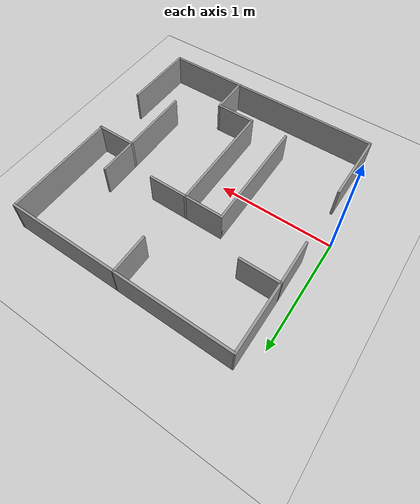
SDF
<sdf version='1.7'>
  <world name='default'>
    <scene>
      <ambient>0.4 0.4 0.4 1</ambient>
      <background>0.7 0.7 0.7 1</background>
      <shadows>1</shadows>
    </scene>
    <light name='sun' type='directional'>
      <cast_shadows>1</cast_shadows>
      <pose>0 0 10 0 -0 0</pose>
      <diffuse>0.8 0.8 0.8 1</diffuse>
      <specular>0.2 0.2 0.2 1</specular>
      <attenuation>
        <range>1000</range>
        <constant>0.9</constant>
        <linear>0.01</linear>
        <quadratic>0.001</quadratic>
      </attenuation>
      <direction>-0.5 0.1 -0.9</direction>
      <spot>
        <inner_angle>0</inner_angle>
        <outer_angle>0</outer_angle>
        <falloff>0</falloff>
      </spot>
    </light>
    <model name='ground_plane'>
      <static>1</static>
      <link name='link'>
        <collision name='collision'>
          <geometry>
            <plane>
              <normal>0 0 1</normal>
              <size>100 100</size>
            </plane>
          </geometry>
          <surface>
            <contact>
              <collide_bitmask>65535</collide_bitmask>
              <ode/>
            </contact>
            <friction>
              <ode>
                <mu>100</mu>
                <mu2>50</mu2>
              </ode>
              <torsional>
                <ode/>
              </torsional>
            </friction>
            <bounce/>
          </surface>
          <max_contacts>10</max_contacts>
        </collision>
        <visual name='visual'>
          <cast_shadows>0</cast_shadows>
          <geometry>
            <plane>
              <normal>0 0 1</normal>
              <size>100 100</size>
            </plane>
          </geometry>
          <material>
            <script>
              <uri>file://media/materials/scripts/gazebo.material</uri>
              <name>Gazebo/Grey</name>
            </script>
          </material>
        </visual>
        <self_collide>0</self_collide>
        <enable_wind>0</enable_wind>
        <kinematic>0</kinematic>
      </link>
    </model>
    <physics type='ode'>
      <real_time_update_rate>1000</real_time_update_rate>
      <max_step_size>0.001</max_step_size>
      <real_time_factor>1</real_time_factor>
      <ode>
        <solver>
          <type>quick</type>
          <iters>150</iters>
          <precon_iters>0</precon_iters>
          <sor>1.4</sor>
          <use_dynamic_moi_rescaling>1</use_dynamic_moi_rescaling>
        </solver>
        <constraints>
          <cfm>1e-05</cfm>
          <erp>0.2</erp>
          <contact_max_correcting_vel>2000</contact_max_correcting_vel>
          <contact_surface_layer>0.01</contact_surface_layer>
        </constraints>
      </ode>
    </physics>
    <gravity>0 0 -9.8</gravity>
    <magnetic_field>6e-06 2.3e-05 -4.2e-05</magnetic_field>
    <atmosphere type='adiabatic'/>
    <wind/>
    <spherical_coordinates>
      <surface_model>EARTH_WGS84</surface_model>
      <latitude_deg>0</latitude_deg>
      <longitude_deg>0</longitude_deg>
      <elevation>0</elevation>
      <heading_deg>0</heading_deg>
    </spherical_coordinates>

    <model name='my_maze'>
      <pose>1.6 0.17 0 0 -0 -1.57</pose>
      <link name='Wall_1'>
        <collision name='Wall_1_Collision'>
          <geometry>
            <box>
              <size>0.4 0.02 0.3</size>
            </box>
          </geometry>
          <pose>0 0 0.15 0 -0 0</pose>
          <max_contacts>10</max_contacts>
          <surface>
            <contact>
              <ode/>
            </contact>
            <bounce/>
            <friction>
              <torsional>
                <ode/>
              </torsional>
              <ode/>
            </friction>
          </surface>
        </collision>
        <visual name='Wall_1_Visual'>
          <pose>0 0 0.15 0 -0 0</pose>
          <geometry>
            <box>
              <size>0.4 0.02 0.3</size>
            </box>
          </geometry>
          <material>
            <script>
              <uri>file://media/materials/scripts/gazebo.material</uri>
              <name>Gazebo/Grey</name>
            </script>
            <ambient>1 1 1 1</ambient>
          </material>
          <meta>
            <layer>0</layer>
          </meta>
        </visual>
        <pose>-0.285549 -1.47495 0 0 -0 0.009893</pose>
        <self_collide>0</self_collide>
        <enable_wind>0</enable_wind>
        <kinematic>0</kinematic>
      </link>
      <link name='Wall_10'>
        <collision name='Wall_10_Collision'>
          <geometry>
            <box>
              <size>0.998774 0.02 0.3</size>
            </box>
          </geometry>
          <pose>0 0 0.15 0 -0 0</pose>
          <max_contacts>10</max_contacts>
          <surface>
            <contact>
              <ode/>
            </contact>
            <bounce/>
            <friction>
              <torsional>
                <ode/>
              </torsional>
              <ode/>
            </friction>
          </surface>
        </collision>
        <visual name='Wall_10_Visual'>
          <pose>0 0 0.15 0 -0 0</pose>
          <geometry>
            <box>
              <size>0.998774 0.02 0.3</size>
            </box>
          </geometry>
          <material>
            <script>
              <uri>file://media/materials/scripts/gazebo.material</uri>
              <name>Gazebo/Grey</name>
            </script>
            <ambient>1 1 1 1</ambient>
          </material>
          <meta>
            <layer>0</layer>
          </meta>
        </visual>
        <pose>-1.05524 -0.972611 0 0 -0 1.56954</pose>
        <self_collide>0</self_collide>
        <enable_wind>0</enable_wind>
        <kinematic>0</kinematic>
      </link>
      <link name='Wall_12'>
        <collision name='Wall_12_Collision'>
          <geometry>
            <box>
              <size>1 0.02 0.3</size>
            </box>
          </geometry>
          <pose>0 0 0.15 0 -0 0</pose>
          <max_contacts>10</max_contacts>
          <surface>
            <contact>
              <ode/>
            </contact>
            <bounce/>
            <friction>
              <torsional>
                <ode/>
              </torsional>
              <ode/>
            </friction>
          </surface>
        </collision>
        <visual name='Wall_12_Visual'>
          <pose>0 0 0.15 0 -0 0</pose>
          <geometry>
            <box>
              <size>1 0.02 0.3</size>
            </box>
          </geometry>
          <material>
            <script>
              <uri>file://media/materials/scripts/gazebo.material</uri>
              <name>Gazebo/Grey</name>
            </script>
            <ambient>1 1 1 1</ambient>
          </material>
          <meta>
            <layer>0</layer>
          </meta>
        </visual>
        <pose>-1.05462 0.006775 0 0 -0 1.5708</pose>
        <self_collide>0</self_collide>
        <enable_wind>0</enable_wind>
        <kinematic>0</kinematic>
      </link>
      <link name='Wall_14'>
        <collision name='Wall_14_Collision'>
          <geometry>
            <box>
              <size>0.35 0.02 0.3</size>
            </box>
          </geometry>
          <pose>0 0 0.15 0 -0 0</pose>
          <max_contacts>10</max_contacts>
          <surface>
            <contact>
              <ode/>
            </contact>
            <bounce/>
            <friction>
              <torsional>
                <ode/>
              </torsional>
              <ode/>
            </friction>
          </surface>
        </collision>
        <visual name='Wall_14_Visual'>
          <pose>0 0 0.15 0 -0 0</pose>
          <geometry>
            <box>
              <size>0.35 0.02 0.3</size>
            </box>
          </geometry>
          <material>
            <script>
              <uri>file://media/materials/scripts/gazebo.material</uri>
              <name>Gazebo/Grey</name>
            </script>
            <ambient>1 1 1 1</ambient>
          </material>
          <meta>
            <layer>0</layer>
          </meta>
        </visual>
        <pose>-0.889623 -0.483225 0 0 -0 0</pose>
        <self_collide>0</self_collide>
        <enable_wind>0</enable_wind>
        <kinematic>0</kinematic>
      </link>
      <link name='Wall_16'>
        <collision name='Wall_16_Collision'>
          <geometry>
            <box>
              <size>1.00693 0.02 0.3</size>
            </box>
          </geometry>
          <pose>0 0 0.15 0 -0 0</pose>
          <max_contacts>10</max_contacts>
          <surface>
            <contact>
              <ode/>
            </contact>
            <bounce/>
            <friction>
              <torsional>
                <ode/>
              </torsional>
              <ode/>
            </friction>
          </surface>
        </collision>
        <visual name='Wall_16_Visual'>
          <pose>0 0 0.15 0 -0 0</pose>
          <geometry>
            <box>
              <size>1.00693 0.02 0.3</size>
            </box>
          </geometry>
          <material>
            <script>
              <uri>file://media/materials/scripts/gazebo.material</uri>
              <name>Gazebo/Grey</name>
            </script>
            <ambient>1 1 1 1</ambient>
          </material>
          <meta>
            <layer>0</layer>
          </meta>
        </visual>
        <pose>-0.561335 0.496775 0 0 -0 0</pose>
        <self_collide>0</self_collide>
        <enable_wind>0</enable_wind>
        <kinematic>0</kinematic>
      </link>
      <link name='Wall_18'>
        <collision name='Wall_18_Collision'>
          <geometry>
            <box>
              <size>0.356575 0.02 0.3</size>
            </box>
          </geometry>
          <pose>0 0 0.15 0 -0 0</pose>
          <max_contacts>10</max_contacts>
          <surface>
            <contact>
              <ode/>
            </contact>
            <bounce/>
            <friction>
              <torsional>
                <ode/>
              </torsional>
              <ode/>
            </friction>
          </surface>
        </collision>
        <visual name='Wall_18_Visual'>
          <pose>0 0 0.15 0 -0 0</pose>
          <geometry>
            <box>
              <size>0.356575 0.02 0.3</size>
            </box>
          </geometry>
          <material>
            <script>
              <uri>file://media/materials/scripts/gazebo.material</uri>
              <name>Gazebo/Grey</name>
            </script>
            <ambient>1 1 1 1</ambient>
          </material>
          <meta>
            <layer>0</layer>
          </meta>
        </visual>
        <pose>-0.068048 0.335062 0 0 -0 -1.5708</pose>
        <self_collide>0</self_collide>
        <enable_wind>0</enable_wind>
        <kinematic>0</kinematic>
      </link>
      <link name='Wall_20'>
        <collision name='Wall_20_Collision'>
          <geometry>
            <box>
              <size>0.35 0.02 0.3</size>
            </box>
          </geometry>
          <pose>0 0 0.15 0 -0 0</pose>
          <max_contacts>10</max_contacts>
          <surface>
            <contact>
              <ode/>
            </contact>
            <bounce/>
            <friction>
              <torsional>
                <ode/>
              </torsional>
              <ode/>
            </friction>
          </surface>
        </collision>
        <visual name='Wall_20_Visual'>
          <pose>0 0 0.15 0 -0 0</pose>
          <geometry>
            <box>
              <size>0.35 0.02 0.3</size>
            </box>
          </geometry>
          <material>
            <script>
              <uri>file://media/materials/scripts/gazebo.material</uri>
              <name>Gazebo/Grey</name>
            </script>
            <ambient>1 1 1 1</ambient>
          </material>
          <meta>
            <layer>0</layer>
          </meta>
        </visual>
        <pose>-0.475549 -1.31183 0 0 -0 1.5708</pose>
        <self_collide>0</self_collide>
        <enable_wind>0</enable_wind>
        <kinematic>0</kinematic>
      </link>
      <link name='Wall_24'>
        <collision name='Wall_24_Collision'>
          <geometry>
            <box>
              <size>0.65 0.02 0.3</size>
            </box>
          </geometry>
          <pose>0 0 0.15 0 -0 0</pose>
          <max_contacts>10</max_contacts>
          <surface>
            <contact>
              <ode/>
            </contact>
            <bounce/>
            <friction>
              <torsional>
                <ode/>
              </torsional>
              <ode/>
            </friction>
          </surface>
        </collision>
        <visual name='Wall_24_Visual'>
          <pose>0 0 0.15 0 -0 0</pose>
          <geometry>
            <box>
              <size>0.65 0.02 0.3</size>
            </box>
          </geometry>
          <material>
            <script>
              <uri>file://media/materials/scripts/gazebo.material</uri>
              <name>Gazebo/Grey</name>
            </script>
            <ambient>1 1 1 1</ambient>
          </material>
          <meta>
            <layer>0</layer>
          </meta>
        </visual>
        <pose>0.740377 0.493487 0 0 -0 -0.010436</pose>
        <self_collide>0</self_collide>
        <enable_wind>0</enable_wind>
        <kinematic>0</kinematic>
      </link>
      <link name='Wall_26'>
        <collision name='Wall_26_Collision'>
          <geometry>
            <box>
              <size>0.7 0.02 0.3</size>
            </box>
          </geometry>
          <pose>0 0 0.15 0 -0 0</pose>
          <max_contacts>10</max_contacts>
          <surface>
            <contact>
              <ode/>
            </contact>
            <bounce/>
            <friction>
              <torsional>
                <ode/>
              </torsional>
              <ode/>
            </friction>
          </surface>
        </collision>
        <visual name='Wall_26_Visual'>
          <pose>0 0 0.15 0 -0 0</pose>
          <geometry>
            <box>
              <size>0.7 0.02 0.3</size>
            </box>
          </geometry>
          <material>
            <script>
              <uri>file://media/materials/scripts/gazebo.material</uri>
              <name>Gazebo/Grey</name>
            </script>
            <ambient>1 1 1 1</ambient>
          </material>
          <meta>
            <layer>0</layer>
          </meta>
        </visual>
        <pose>1.05562 0.150064 0 0 -0 -1.57009</pose>
        <self_collide>0</self_collide>
        <enable_wind>0</enable_wind>
        <kinematic>0</kinematic>
      </link>
      <link name='Wall_28'>
        <collision name='Wall_28_Collision'>
          <geometry>
            <box>
              <size>1.3 0.02 0.3</size>
            </box>
          </geometry>
          <pose>0 0 0.15 0 -0 0</pose>
          <max_contacts>10</max_contacts>
          <surface>
            <contact>
              <ode/>
            </contact>
            <bounce/>
            <friction>
              <torsional>
                <ode/>
              </torsional>
              <ode/>
            </friction>
          </surface>
        </collision>
        <visual name='Wall_28_Visual'>
          <pose>0 0 0.15 0 -0 0</pose>
          <geometry>
            <box>
              <size>1.3 0.02 0.3</size>
            </box>
          </geometry>
          <material>
            <script>
              <uri>file://media/materials/scripts/gazebo.material</uri>
              <name>Gazebo/Grey</name>
            </script>
            <ambient>1 1 1 1</ambient>
          </material>
          <meta>
            <layer>0</layer>
          </meta>
        </visual>
        <pose>1.05586 -0.830071 0 0 -0 -1.5708</pose>
        <self_collide>0</self_collide>
        <enable_wind>0</enable_wind>
        <kinematic>0</kinematic>
      </link>
      <link name='Wall_30'>
        <collision name='Wall_30_Collision'>
          <geometry>
            <box>
              <size>0.35 0.02 0.3</size>
            </box>
          </geometry>
          <pose>0 0 0.15 0 -0 0</pose>
          <max_contacts>10</max_contacts>
          <surface>
            <contact>
              <ode/>
            </contact>
            <bounce/>
            <friction>
              <torsional>
                <ode/>
              </torsional>
              <ode/>
            </friction>
          </surface>
        </collision>
        <visual name='Wall_30_Visual'>
          <pose>0 0 0.15 0 -0 0</pose>
          <geometry>
            <box>
              <size>0.35 0.02 0.3</size>
            </box>
          </geometry>
          <material>
            <script>
              <uri>file://media/materials/scripts/gazebo.material</uri>
              <name>Gazebo/Grey</name>
            </script>
            <ambient>1 1 1 1</ambient>
          </material>
          <meta>
            <layer>0</layer>
          </meta>
        </visual>
        <pose>0.890857 -0.190071 0 0 -0 3.14159</pose>
        <self_collide>0</self_collide>
        <enable_wind>0</enable_wind>
        <kinematic>0</kinematic>
      </link>
      <link name='Wall_32'>
        <collision name='Wall_32_Collision'>
          <geometry>
            <box>
              <size>0.35 0.02 0.3</size>
            </box>
          </geometry>
          <pose>0 0 0.15 0 -0 0</pose>
          <max_contacts>10</max_contacts>
          <surface>
            <contact>
              <ode/>
            </contact>
            <bounce/>
            <friction>
              <torsional>
                <ode/>
              </torsional>
              <ode/>
            </friction>
          </surface>
        </collision>
        <visual name='Wall_32_Visual'>
          <pose>0 0 0.15 0 -0 0</pose>
          <geometry>
            <box>
              <size>0.35 0.02 0.3</size>
            </box>
          </geometry>
          <material>
            <script>
              <uri>file://media/materials/scripts/gazebo.material</uri>
              <name>Gazebo/Grey</name>
            </script>
            <ambient>1 1 1 1</ambient>
          </material>
          <meta>
            <layer>0</layer>
          </meta>
        </visual>
        <pose>0.725857 -0.355071 0 0 -0 -1.5708</pose>
        <self_collide>0</self_collide>
        <enable_wind>0</enable_wind>
        <kinematic>0</kinematic>
      </link>
      <link name='Wall_34'>
        <collision name='Wall_34_Collision'>
          <geometry>
            <box>
              <size>1 0.02 0.3</size>
            </box>
          </geometry>
          <pose>0 0 0.15 0 -0 0</pose>
          <max_contacts>10</max_contacts>
          <surface>
            <contact>
              <ode/>
            </contact>
            <bounce/>
            <friction>
              <torsional>
                <ode/>
              </torsional>
              <ode/>
            </friction>
          </surface>
        </collision>
        <visual name='Wall_34_Visual'>
          <pose>0 0 0.15 0 -0 0</pose>
          <geometry>
            <box>
              <size>1 0.02 0.3</size>
            </box>
          </geometry>
          <material>
            <script>
              <uri>file://media/materials/scripts/gazebo.material</uri>
              <name>Gazebo/Grey</name>
            </script>
            <ambient>1 1 1 1</ambient>
          </material>
          <meta>
            <layer>0</layer>
          </meta>
        </visual>
        <pose>0.235857 -0.520071 0 0 -0 3.14159</pose>
        <self_collide>0</self_collide>
        <enable_wind>0</enable_wind>
        <kinematic>0</kinematic>
      </link>
      <link name='Wall_36'>
        <collision name='Wall_36_Collision'>
          <geometry>
            <box>
              <size>0.35 0.02 0.3</size>
            </box>
          </geometry>
          <pose>0 0 0.15 0 -0 0</pose>
          <max_contacts>10</max_contacts>
          <surface>
            <contact>
              <ode/>
            </contact>
            <bounce/>
            <friction>
              <torsional>
                <ode/>
              </torsional>
              <ode/>
            </friction>
          </surface>
        </collision>
        <visual name='Wall_36_Visual'>
          <pose>0 0 0.15 0 -0 0</pose>
          <geometry>
            <box>
              <size>0.35 0.02 0.3</size>
            </box>
          </geometry>
          <material>
            <script>
              <uri>file://media/materials/scripts/gazebo.material</uri>
              <name>Gazebo/Grey</name>
            </script>
            <ambient>1 1 1 1</ambient>
          </material>
          <meta>
            <layer>0</layer>
          </meta>
        </visual>
        <pose>-0.254143 -0.685071 0 0 -0 -1.5708</pose>
        <self_collide>0</self_collide>
        <enable_wind>0</enable_wind>
        <kinematic>0</kinematic>
      </link>
      <link name='Wall_38'>
        <collision name='Wall_38_Collision'>
          <geometry>
            <box>
              <size>1 0.02 0.3</size>
            </box>
          </geometry>
          <pose>0 0 0.15 0 -0 0</pose>
          <max_contacts>10</max_contacts>
          <surface>
            <contact>
              <ode/>
            </contact>
            <bounce/>
            <friction>
              <torsional>
                <ode/>
              </torsional>
              <ode/>
            </friction>
          </surface>
        </collision>
        <visual name='Wall_38_Visual'>
          <pose>0 0 0.15 0 -0 0</pose>
          <geometry>
            <box>
              <size>1 0.02 0.3</size>
            </box>
          </geometry>
          <material>
            <script>
              <uri>file://media/materials/scripts/gazebo.material</uri>
              <name>Gazebo/Grey</name>
            </script>
            <ambient>1 1 1 1</ambient>
          </material>
          <meta>
            <layer>0</layer>
          </meta>
        </visual>
        <pose>0.235857 -0.850071 0 0 -0 0</pose>
        <self_collide>0</self_collide>
        <enable_wind>0</enable_wind>
        <kinematic>0</kinematic>
      </link>
      <link name='Wall_40'>
        <collision name='Wall_40_Collision'>
          <geometry>
            <box>
              <size>0.35 0.02 0.3</size>
            </box>
          </geometry>
          <pose>0 0 0.15 0 -0 0</pose>
          <max_contacts>10</max_contacts>
          <surface>
            <contact>
              <ode/>
            </contact>
            <bounce/>
            <friction>
              <torsional>
                <ode/>
              </torsional>
              <ode/>
            </friction>
          </surface>
        </collision>
        <visual name='Wall_40_Visual'>
          <pose>0 0 0.15 0 -0 0</pose>
          <geometry>
            <box>
              <size>0.35 0.02 0.3</size>
            </box>
          </geometry>
          <material>
            <script>
              <uri>file://media/materials/scripts/gazebo.material</uri>
              <name>Gazebo/Grey</name>
            </script>
            <ambient>1 1 1 1</ambient>
          </material>
          <meta>
            <layer>0</layer>
          </meta>
        </visual>
        <pose>-0.254143 -0.355071 0 0 -0 1.5708</pose>
        <self_collide>0</self_collide>
        <enable_wind>0</enable_wind>
        <kinematic>0</kinematic>
      </link>
      <link name='Wall_42'>
        <collision name='Wall_42_Collision'>
          <geometry>
            <box>
              <size>0.62 0.02 0.3</size>
            </box>
          </geometry>
          <pose>0 0 0.15 0 -0 0</pose>
          <max_contacts>10</max_contacts>
          <surface>
            <contact>
              <ode/>
            </contact>
            <bounce/>
            <friction>
              <torsional>
                <ode/>
              </torsional>
              <ode/>
            </friction>
          </surface>
        </collision>
        <visual name='Wall_42_Visual'>
          <pose>0 0 0.15 0 -0 0</pose>
          <geometry>
            <box>
              <size>0.62 0.02 0.3</size>
            </box>
          </geometry>
          <material>
            <script>
              <uri>file://media/materials/scripts/gazebo.material</uri>
              <name>Gazebo/Grey</name>
            </script>
            <ambient>1 1 1 1</ambient>
          </material>
          <meta>
            <layer>0</layer>
          </meta>
        </visual>
        <pose>0.755857 -1.47007 0 0 -0 3.14159</pose>
        <self_collide>0</self_collide>
        <enable_wind>0</enable_wind>
        <kinematic>0</kinematic>
      </link>
      <link name='Wall_46'>
        <collision name='Wall_46_Collision'>
          <geometry>
            <box>
              <size>0.35 0.02 0.3</size>
            </box>
          </geometry>
          <pose>0 0 0.15 0 -0 0</pose>
          <max_contacts>10</max_contacts>
          <surface>
            <contact>
              <ode/>
            </contact>
            <bounce/>
            <friction>
              <torsional>
                <ode/>
              </torsional>
              <ode/>
            </friction>
          </surface>
        </collision>
        <visual name='Wall_46_Visual'>
          <pose>0 0 0.15 0 -0 0</pose>
          <geometry>
            <box>
              <size>0.35 0.02 0.3</size>
            </box>
          </geometry>
          <material>
            <script>
              <uri>file://media/materials/scripts/gazebo.material</uri>
              <name>Gazebo/Grey</name>
            </script>
            <ambient>1 1 1 1</ambient>
          </material>
          <meta>
            <layer>0</layer>
          </meta>
        </visual>
        <pose>-0.233048 0.166775 0 0 -0 3.14159</pose>
        <self_collide>0</self_collide>
        <enable_wind>0</enable_wind>
        <kinematic>0</kinematic>
      </link>
      <link name='Wall_48'>
        <collision name='Wall_48_Collision'>
          <geometry>
            <box>
              <size>0.63 0.02 0.3</size>
            </box>
          </geometry>
          <pose>0 0 0.15 0 -0 0</pose>
          <max_contacts>10</max_contacts>
          <surface>
            <contact>
              <ode/>
            </contact>
            <bounce/>
            <friction>
              <torsional>
                <ode/>
              </torsional>
              <ode/>
            </friction>
          </surface>
        </collision>
        <visual name='Wall_48_Visual'>
          <pose>0 0 0.15 0 -0 0</pose>
          <geometry>
            <box>
              <size>0.63 0.02 0.3</size>
            </box>
          </geometry>
          <material>
            <script>
              <uri>file://media/materials/scripts/gazebo.material</uri>
              <name>Gazebo/Grey</name>
            </script>
            <ambient>1 1 1 1</ambient>
          </material>
          <meta>
            <layer>0</layer>
          </meta>
        </visual>
        <pose>0.236952 0.166775 0 0 -0 0</pose>
        <self_collide>0</self_collide>
        <enable_wind>0</enable_wind>
        <kinematic>0</kinematic>
      </link>
      <link name='Wall_7'>
        <collision name='Wall_7_Collision'>
          <geometry>
            <box>
              <size>0.6 0.02 0.3</size>
            </box>
          </geometry>
          <pose>0 0 0.15 0 -0 0</pose>
          <max_contacts>10</max_contacts>
          <surface>
            <contact>
              <ode/>
            </contact>
            <bounce/>
            <friction>
              <torsional>
                <ode/>
              </torsional>
              <ode/>
            </friction>
          </surface>
        </collision>
        <visual name='Wall_7_Visual'>
          <pose>0 0 0.15 0 -0 0</pose>
          <geometry>
            <box>
              <size>0.6 0.02 0.3</size>
            </box>
          </geometry>
          <material>
            <script>
              <uri>file://media/materials/scripts/gazebo.material</uri>
              <name>Gazebo/Grey</name>
            </script>
            <ambient>1 1 1 1</ambient>
          </material>
          <meta>
            <layer>0</layer>
          </meta>
        </visual>
        <pose>-0.765543 -1.47504 0 0 -0 3.1354</pose>
        <self_collide>0</self_collide>
        <enable_wind>0</enable_wind>
        <kinematic>0</kinematic>
      </link>
      <static>1</static>
    </model>

  </world>
</sdf>
